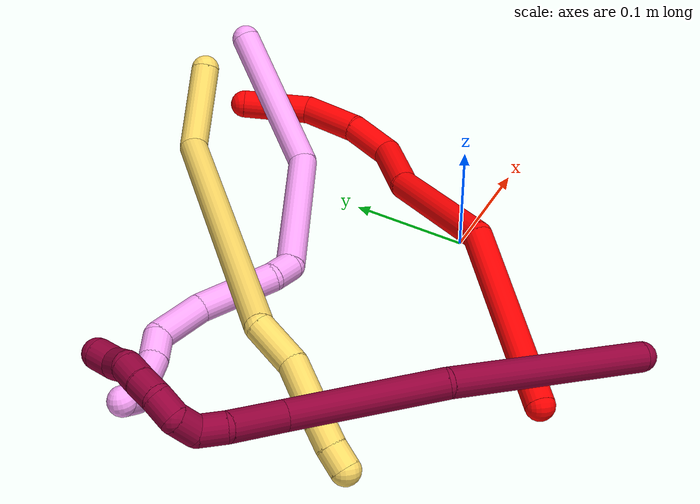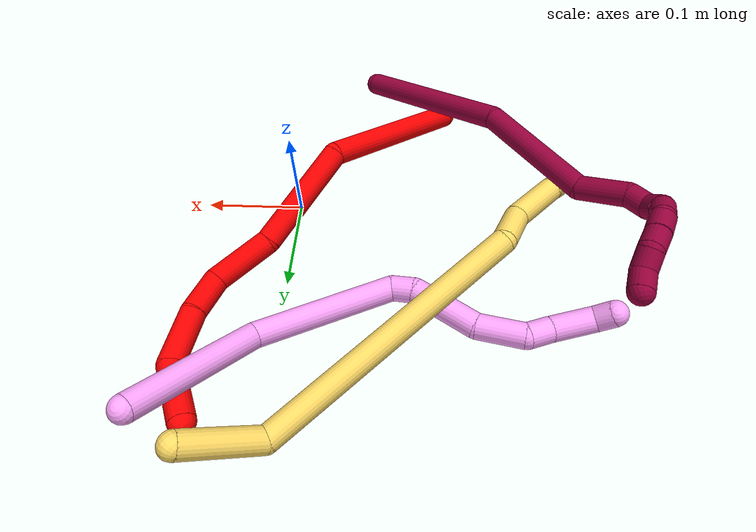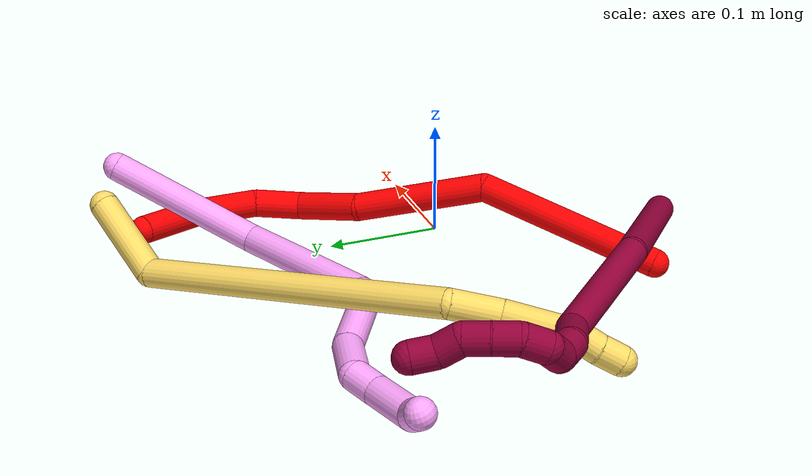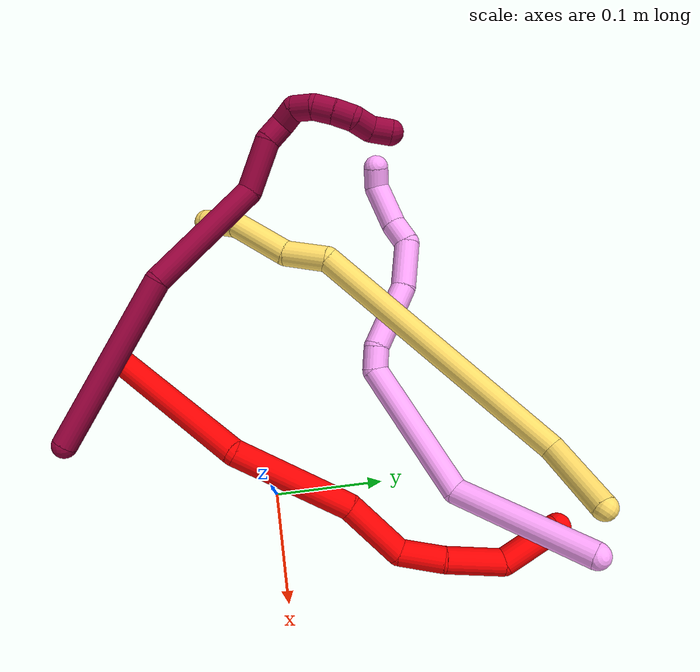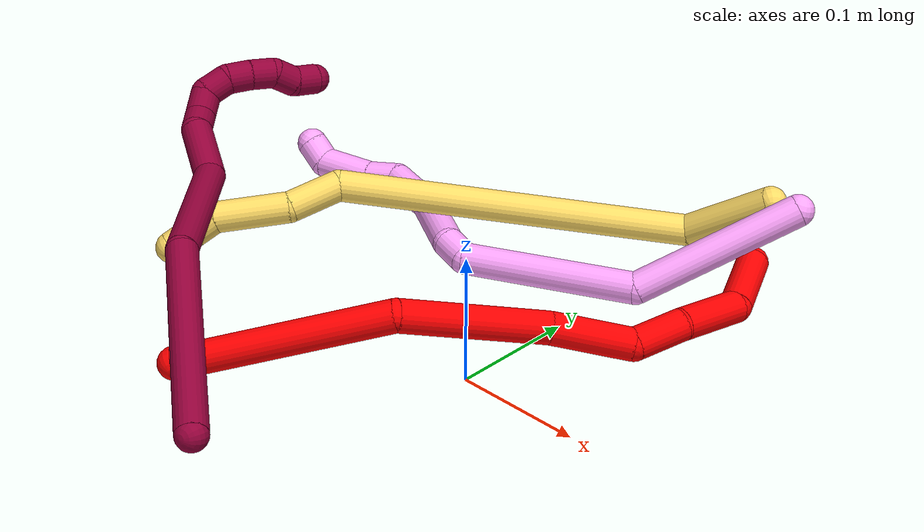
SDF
<sdf version="1.7">
 <world name="default">
  <model name="photoneo_s_sensor">
   <static>1</static>
   <pose>0 0 2 1.57079 1.57079 3.14159</pose>
   <link name="link">
    <inertial><mass>0.1</mass></inertial>
    <sensor name="sensor" type="depth">
     <update_rate>30</update_rate>
     <camera>
      <horizontal_fov>1.22</horizontal_fov>
      <image><width>1920</width><height>1200</height><format>B8G8R8</format></image>
      <clip><near>0.1</near><far>4</far></clip>
      <depth_camera><output>points</output></depth_camera>
     </camera>
     <plugin name="camera_plugin" filename="libgazebo_ros_depth_camera.so">
      <baseline>0.2</baseline>
      <alwaysOn>1</alwaysOn>
      <updateRate>0.0</updateRate>
      <cameraName>camera_ir</cameraName>
      <imageTopicName>/camera/color/image_raw</imageTopicName>
      <cameraInfoTopicName>/camera/color/camera_info</cameraInfoTopicName>
      <depthImageTopicName>/camera/depth/image_raw</depthImageTopicName>
      <depthImageCameraInfoTopicName>/camera/depth/camera_info</depthImageCameraInfoTopicName>
      <pointCloudTopicName>/camera/depth/points</pointCloudTopicName>
      <frameName>fr_optical</frameName>
      <pointCloudCutoff>0.1</pointCloudCutoff>
      <pointCloudCutoffMax>2.0</pointCloudCutoffMax>
      <distortionK1>0</distortionK1>
      <distortionK2>0</distortionK2>
      <distortionK3>0</distortionK3>
      <distortionT1>0</distortionT1>
      <distortionT2>0</distortionT2>
      <CxPrime>0</CxPrime>
      <Cx>0</Cx>
      <Cy>0</Cy>
      <focalLength>0</focalLength>
      <hackBaseline>0</hackBaseline>
     </plugin>
    </sensor>
   </link>
  </model>
  <model name="bin">
   <static>1</static>
   <link name="bottom">
    <collision name="collision-bottom">
     <pose>0 0 -0.01 0 -0 0</pose>
     <geometry><box><size>0.8 0.6 0.02</size></box></geometry>
     <surface>
      <friction><ode><mu>100</mu><mu2>100</mu2></ode></friction>
      <contact><collide_bitmask>65535</collide_bitmask></contact>
     </surface>
    </collision>
   </link>
   <link name="west_wall">
    <collision name="collision-west_wall">
     <pose>-0.41 0 0.1 0 -0 0</pose>
     <geometry><box><size>0.02 0.6 0.2</size></box></geometry>
     <surface>
      <friction><ode><mu>100</mu><mu2>100</mu2></ode></friction>
      <contact><collide_bitmask>65535</collide_bitmask></contact>
     </surface>
    </collision>
   </link>
   <link name="east_wall">
    <collision name="collision-east_wall">
     <pose>0.41 0 0.1 0 -0 0</pose>
     <geometry><box><size>0.02 0.6 0.2</size></box></geometry>
     <surface>
      <friction><ode><mu>100</mu><mu2>100</mu2></ode></friction>
      <contact><collide_bitmask>65535</collide_bitmask></contact>
     </surface>
    </collision>
   </link>
   <link name="south_wall">
    <collision name="collision-south_wall">
     <pose>0 -0.31 0.1 0 -0 0</pose>
     <geometry><box><size>0.8 0.02 0.2</size></box></geometry>
     <surface>
      <friction><ode><mu>100</mu><mu2>100</mu2></ode></friction>
      <contact><collide_bitmask>65535</collide_bitmask></contact>
     </surface>
    </collision>
   </link>
   <link name="north_wall">
    <collision name="collision-north_wall">
     <pose>0 0.31 0.1 0 -0 0</pose>
     <geometry><box><size>0.8 0.02 0.2</size></box></geometry>
     <surface>
      <friction><ode><mu>100</mu><mu2>100</mu2></ode></friction>
      <contact><collide_bitmask>65535</collide_bitmask></contact>
     </surface>
    </collision>
   </link>
  </model>
  <model name="2">
   <static>0</static>
   <link name="2">
    <collision name="collision-cylinder-e_1_1_4">
     <pose>0.044298 0.06902 0.000218 -1.56764 0.570599 -0.568895</pose>
     <geometry><cylinder><radius>0.0125</radius><length>0.164027</length></cylinder></geometry>
     <surface>
      <friction><ode><mu>1.16</mu><mu2>1.16</mu2><slip1>0</slip1><slip2>0</slip2></ode></friction>
      <contact><ode><kp>1e+06</kp><kd>1</kd><max_vel>0</max_vel><min_depth>0.001</min_depth></ode></contact>
     </surface>
    </collision>
    <visual name="visual-cylinder-e_1_1_4">
     <pose>0.044298 0.06902 0.000218 -1.56764 0.570599 -0.568895</pose>
     <geometry><cylinder><radius>0.0125</radius><length>0.164027</length></cylinder></geometry>
     <material><ambient>1 0 0 1</ambient></material>
    </visual>
    <collision name="collision-cylinder-e_2_4_5">
     <pose>0.090915 0.195568 0.011913 -1.37387 0.039492 -0.032392</pose>
     <geometry><cylinder><radius>0.0125</radius><length>0.117413</length></cylinder></geometry>
     <surface>
      <friction><ode><mu>1.16</mu><mu2>1.16</mu2><slip1>0</slip1><slip2>0</slip2></ode></friction>
      <contact><ode><kp>1e+06</kp><kd>1</kd><max_vel>0</max_vel><min_depth>0.001</min_depth></ode></contact>
     </surface>
    </collision>
    <visual name="visual-cylinder-e_2_4_5">
     <pose>0.090915 0.195568 0.011913 -1.37387 0.039492 -0.032392</pose>
     <geometry><cylinder><radius>0.0125</radius><length>0.117413</length></cylinder></geometry>
     <material><ambient>1 0 0 1</ambient></material>
    </visual>
    <collision name="collision-cylinder-e_3_5_6">
     <pose>0.097254 0.283815 0.020418 -1.66725 0.129566 -0.142664</pose>
     <geometry><cylinder><radius>0.0125</radius><length>0.062249</length></cylinder></geometry>
     <surface>
      <friction><ode><mu>1.16</mu><mu2>1.16</mu2><slip1>0</slip1><slip2>0</slip2></ode></friction>
      <contact><ode><kp>1e+06</kp><kd>1</kd><max_vel>0</max_vel><min_depth>0.001</min_depth></ode></contact>
     </surface>
    </collision>
    <visual name="visual-cylinder-e_3_5_6">
     <pose>0.097254 0.283815 0.020418 -1.66725 0.129566 -0.142664</pose>
     <geometry><cylinder><radius>0.0125</radius><length>0.062249</length></cylinder></geometry>
     <material><ambient>1 0 0 1</ambient></material>
    </visual>
    <collision name="collision-cylinder-e_4_6_7">
     <pose>0.108003 0.331761 0.027427 -1.04564 0.325873 -0.188921</pose>
     <geometry><cylinder><radius>0.0125</radius><length>0.042029</length></cylinder></geometry>
     <surface>
      <friction><ode><mu>1.16</mu><mu2>1.16</mu2><slip1>0</slip1><slip2>0</slip2></ode></friction>
      <contact><ode><kp>1e+06</kp><kd>1</kd><max_vel>0</max_vel><min_depth>0.001</min_depth></ode></contact>
     </surface>
    </collision>
    <visual name="visual-cylinder-e_4_6_7">
     <pose>0.108003 0.331761 0.027427 -1.04564 0.325873 -0.188921</pose>
     <geometry><cylinder><radius>0.0125</radius><length>0.042029</length></cylinder></geometry>
     <material><ambient>1 0 0 1</ambient></material>
    </visual>
    <collision name="collision-cylinder-e_5_7_8">
     <pose>0.117907 0.37122 0.052562 -0.972538 0.117545 -0.062186</pose>
     <geometry><cylinder><radius>0.0125</radius><length>0.054186</length></cylinder></geometry>
     <surface>
      <friction><ode><mu>1.16</mu><mu2>1.16</mu2><slip1>0</slip1><slip2>0</slip2></ode></friction>
      <contact><ode><kp>1e+06</kp><kd>1</kd><max_vel>0</max_vel><min_depth>0.001</min_depth></ode></contact>
     </surface>
    </collision>
    <visual name="visual-cylinder-e_5_7_8">
     <pose>0.117907 0.37122 0.052562 -0.972538 0.117545 -0.062186</pose>
     <geometry><cylinder><radius>0.0125</radius><length>0.054186</length></cylinder></geometry>
     <material><ambient>1 0 0 1</ambient></material>
    </visual>
    <collision name="collision-cylinder-e_6_8_2">
     <pose>0.123291 0.403712 0.095871 -0.349423 0.073478 -0.012975</pose>
     <geometry><cylinder><radius>0.0125</radius><length>0.060096</length></cylinder></geometry>
     <surface>
      <friction><ode><mu>1.16</mu><mu2>1.16</mu2><slip1>0</slip1><slip2>0</slip2></ode></friction>
      <contact><ode><kp>1e+06</kp><kd>1</kd><max_vel>0</max_vel><min_depth>0.001</min_depth></ode></contact>
     </surface>
    </collision>
    <visual name="visual-cylinder-e_6_8_2">
     <pose>0.123291 0.403712 0.095871 -0.349423 0.073478 -0.012975</pose>
     <geometry><cylinder><radius>0.0125</radius><length>0.060096</length></cylinder></geometry>
     <material><ambient>1 0 0 1</ambient></material>
    </visual>
    <collision name="collision-sphere-2">
     <pose>0.125497 0.413971 0.124027 0 -0 0</pose>
     <geometry><sphere><radius>0.0125</radius></sphere></geometry>
     <surface>
      <friction><ode><mu>1.16</mu><mu2>1.16</mu2><slip1>0</slip1><slip2>0</slip2></ode></friction>
      <contact><ode><kp>1e+06</kp><kd>1</kd><max_vel>0</max_vel><min_depth>0.001</min_depth></ode></contact>
     </surface>
    </collision>
    <visual name="visual-sphere-2">
     <pose>0.125497 0.413971 0.124027 0 -0 0</pose>
     <geometry><sphere><radius>0.0125</radius></sphere></geometry>
     <material><ambient>1 0 0 1</ambient></material>
    </visual>
    <collision name="collision-sphere-4">
     <pose>0.088597 0.138041 0.000436 0 -0 0</pose>
     <geometry><sphere><radius>0.0125</radius></sphere></geometry>
     <surface>
      <friction><ode><mu>1.16</mu><mu2>1.16</mu2><slip1>0</slip1><slip2>0</slip2></ode></friction>
      <contact><ode><kp>1e+06</kp><kd>1</kd><max_vel>0</max_vel><min_depth>0.001</min_depth></ode></contact>
     </surface>
    </collision>
    <visual name="visual-sphere-4">
     <pose>0.088597 0.138041 0.000436 0 -0 0</pose>
     <geometry><sphere><radius>0.0125</radius></sphere></geometry>
     <material><ambient>1 0 0 1</ambient></material>
    </visual>
    <collision name="collision-sphere-1">
     <geometry><sphere><radius>0.0125</radius></sphere></geometry>
     <surface>
      <friction><ode><mu>1.16</mu><mu2>1.16</mu2><slip1>0</slip1><slip2>0</slip2></ode></friction>
      <contact><ode><kp>1e+06</kp><kd>1</kd><max_vel>0</max_vel><min_depth>0.001</min_depth></ode></contact>
     </surface>
    </collision>
    <visual name="visual-sphere-1">
     <geometry><sphere><radius>0.0125</radius></sphere></geometry>
     <material><ambient>1 0 0 1</ambient></material>
    </visual>
    <collision name="collision-sphere-8">
     <pose>0.121085 0.393453 0.067715 0 -0 0</pose>
     <geometry><sphere><radius>0.0125</radius></sphere></geometry>
     <surface>
      <friction><ode><mu>1.16</mu><mu2>1.16</mu2><slip1>0</slip1><slip2>0</slip2></ode></friction>
      <contact><ode><kp>1e+06</kp><kd>1</kd><max_vel>0</max_vel><min_depth>0.001</min_depth></ode></contact>
     </surface>
    </collision>
    <visual name="visual-sphere-8">
     <pose>0.121085 0.393453 0.067715 0 -0 0</pose>
     <geometry><sphere><radius>0.0125</radius></sphere></geometry>
     <material><ambient>1 0 0 1</ambient></material>
    </visual>
    <collision name="collision-sphere-5">
     <pose>0.093232 0.253095 0.02339 0 -0 0</pose>
     <geometry><sphere><radius>0.0125</radius></sphere></geometry>
     <surface>
      <friction><ode><mu>1.16</mu><mu2>1.16</mu2><slip1>0</slip1><slip2>0</slip2></ode></friction>
      <contact><ode><kp>1e+06</kp><kd>1</kd><max_vel>0</max_vel><min_depth>0.001</min_depth></ode></contact>
     </surface>
    </collision>
    <visual name="visual-sphere-5">
     <pose>0.093232 0.253095 0.02339 0 -0 0</pose>
     <geometry><sphere><radius>0.0125</radius></sphere></geometry>
     <material><ambient>1 0 0 1</ambient></material>
    </visual>
    <collision name="collision-sphere-6">
     <pose>0.101275 0.314535 0.017446 0 -0 0</pose>
     <geometry><sphere><radius>0.0125</radius></sphere></geometry>
     <surface>
      <friction><ode><mu>1.16</mu><mu2>1.16</mu2><slip1>0</slip1><slip2>0</slip2></ode></friction>
      <contact><ode><kp>1e+06</kp><kd>1</kd><max_vel>0</max_vel><min_depth>0.001</min_depth></ode></contact>
     </surface>
    </collision>
    <visual name="visual-sphere-6">
     <pose>0.101275 0.314535 0.017446 0 -0 0</pose>
     <geometry><sphere><radius>0.0125</radius></sphere></geometry>
     <material><ambient>1 0 0 1</ambient></material>
    </visual>
    <collision name="collision-sphere-7">
     <pose>0.11473 0.348987 0.037408 0 -0 0</pose>
     <geometry><sphere><radius>0.0125</radius></sphere></geometry>
     <surface>
      <friction><ode><mu>1.16</mu><mu2>1.16</mu2><slip1>0</slip1><slip2>0</slip2></ode></friction>
      <contact><ode><kp>1e+06</kp><kd>1</kd><max_vel>0</max_vel><min_depth>0.001</min_depth></ode></contact>
     </surface>
    </collision>
    <visual name="visual-sphere-7">
     <pose>0.11473 0.348987 0.037408 0 -0 0</pose>
     <geometry><sphere><radius>0.0125</radius></sphere></geometry>
     <material><ambient>1 0 0 1</ambient></material>
    </visual>
    <inertial>
     <pose>0.084664 0.220541 0.024936 0 -0 0</pose>
     <mass>0.5</mass>
     <inertia><ixx>0.000299</ixx><ixy>0</ixy><ixz>0</ixz><iyy>2e-05</iyy><iyz>0</iyz><izz>-0.000706</izz></inertia>
    </inertial>
   </link>
   <pose>-0.151588 -0.14231 0.011497 -1.2081 -1.23252 0.452327</pose>
  </model>
  <model name="4">
   <static>0</static>
   <link name="4">
    <collision name="collision-cylinder-e_1_1_4">
     <pose>-0.034712 -0.035735 -0.045852 2.47956 -0.538292 -1.35271</pose>
     <geometry><cylinder><radius>0.0125</radius><length>0.135415</length></cylinder></geometry>
     <surface>
      <friction><ode><mu>1.16</mu><mu2>1.16</mu2><slip1>0</slip1><slip2>0</slip2></ode></friction>
      <contact><ode><kp>1e+06</kp><kd>1</kd><max_vel>0</max_vel><min_depth>0.001</min_depth></ode></contact>
     </surface>
    </collision>
    <visual name="visual-cylinder-e_1_1_4">
     <pose>-0.034712 -0.035735 -0.045852 2.47956 -0.538292 -1.35271</pose>
     <geometry><cylinder><radius>0.0125</radius><length>0.135415</length></cylinder></geometry>
     <material><ambient>1 0.65098 0.996078 1</ambient></material>
    </visual>
    <collision name="collision-cylinder-e_2_4_5">
     <pose>-0.132348 -0.092812 -0.107909 2.22025 -1.16821 -1.85363</pose>
     <geometry><cylinder><radius>0.0125</radius><length>0.136787</length></cylinder></geometry>
     <surface>
      <friction><ode><mu>1.16</mu><mu2>1.16</mu2><slip1>0</slip1><slip2>0</slip2></ode></friction>
      <contact><ode><kp>1e+06</kp><kd>1</kd><max_vel>0</max_vel><min_depth>0.001</min_depth></ode></contact>
     </surface>
    </collision>
    <visual name="visual-cylinder-e_2_4_5">
     <pose>-0.132348 -0.092812 -0.107909 2.22025 -1.16821 -1.85363</pose>
     <geometry><cylinder><radius>0.0125</radius><length>0.136787</length></cylinder></geometry>
     <material><ambient>1 0.65098 0.996078 1</ambient></material>
    </visual>
    <collision name="collision-cylinder-e_3_5_6">
     <pose>-0.206442 -0.111543 -0.122998 -1.16664 -1.32186 0.948234</pose>
     <geometry><cylinder><radius>0.0125</radius><length>0.023047</length></cylinder></geometry>
     <surface>
      <friction><ode><mu>1.16</mu><mu2>1.16</mu2><slip1>0</slip1><slip2>0</slip2></ode></friction>
      <contact><ode><kp>1e+06</kp><kd>1</kd><max_vel>0</max_vel><min_depth>0.001</min_depth></ode></contact>
     </surface>
    </collision>
    <visual name="visual-cylinder-e_3_5_6">
     <pose>-0.206442 -0.111543 -0.122998 -1.16664 -1.32186 0.948234</pose>
     <geometry><cylinder><radius>0.0125</radius><length>0.023047</length></cylinder></geometry>
     <material><ambient>1 0.65098 0.996078 1</ambient></material>
    </visual>
    <collision name="collision-cylinder-e_4_6_7">
     <pose>-0.245245 -0.088703 -0.121118 -1.53307 -0.93855 0.908451</pose>
     <geometry><cylinder><radius>0.0125</radius><length>0.068511</length></cylinder></geometry>
     <surface>
      <friction><ode><mu>1.16</mu><mu2>1.16</mu2><slip1>0</slip1><slip2>0</slip2></ode></friction>
      <contact><ode><kp>1e+06</kp><kd>1</kd><max_vel>0</max_vel><min_depth>0.001</min_depth></ode></contact>
     </surface>
    </collision>
    <visual name="visual-cylinder-e_4_6_7">
     <pose>-0.245245 -0.088703 -0.121118 -1.53307 -0.93855 0.908451</pose>
     <geometry><cylinder><radius>0.0125</radius><length>0.068511</length></cylinder></geometry>
     <material><ambient>1 0.65098 0.996078 1</ambient></material>
    </visual>
    <collision name="collision-cylinder-e_5_7_8">
     <pose>-0.295374 -0.061666 -0.119949 -1.5113 -1.27645 1.21999</pose>
     <geometry><cylinder><radius>0.0125</radius><length>0.047013</length></cylinder></geometry>
     <surface>
      <friction><ode><mu>1.16</mu><mu2>1.16</mu2><slip1>0</slip1><slip2>0</slip2></ode></friction>
      <contact><ode><kp>1e+06</kp><kd>1</kd><max_vel>0</max_vel><min_depth>0.001</min_depth></ode></contact>
     </surface>
    </collision>
    <visual name="visual-cylinder-e_5_7_8">
     <pose>-0.295374 -0.061666 -0.119949 -1.5113 -1.27645 1.21999</pose>
     <geometry><cylinder><radius>0.0125</radius><length>0.047013</length></cylinder></geometry>
     <material><ambient>1 0.65098 0.996078 1</ambient></material>
    </visual>
    <collision name="collision-cylinder-e_6_8_9">
     <pose>-0.329151 -0.05796 -0.123743 2.50543 -1.13738 -2.19016</pose>
     <geometry><cylinder><radius>0.0125</radius><length>0.024862</length></cylinder></geometry>
     <surface>
      <friction><ode><mu>1.16</mu><mu2>1.16</mu2><slip1>0</slip1><slip2>0</slip2></ode></friction>
      <contact><ode><kp>1e+06</kp><kd>1</kd><max_vel>0</max_vel><min_depth>0.001</min_depth></ode></contact>
     </surface>
    </collision>
    <visual name="visual-cylinder-e_6_8_9">
     <pose>-0.329151 -0.05796 -0.123743 2.50543 -1.13738 -2.19016</pose>
     <geometry><cylinder><radius>0.0125</radius><length>0.024862</length></cylinder></geometry>
     <material><ambient>1 0.65098 0.996078 1</ambient></material>
    </visual>
    <collision name="collision-cylinder-e_7_9_10">
     <pose>-0.361982 -0.064841 -0.131164 2.27676 -1.3443 -2.0904</pose>
     <geometry><cylinder><radius>0.0125</radius><length>0.044228</length></cylinder></geometry>
     <surface>
      <friction><ode><mu>1.16</mu><mu2>1.16</mu2><slip1>0</slip1><slip2>0</slip2></ode></friction>
      <contact><ode><kp>1e+06</kp><kd>1</kd><max_vel>0</max_vel><min_depth>0.001</min_depth></ode></contact>
     </surface>
    </collision>
    <visual name="visual-cylinder-e_7_9_10">
     <pose>-0.361982 -0.064841 -0.131164 2.27676 -1.3443 -2.0904</pose>
     <geometry><cylinder><radius>0.0125</radius><length>0.044228</length></cylinder></geometry>
     <material><ambient>1 0.65098 0.996078 1</ambient></material>
    </visual>
    <collision name="collision-cylinder-e_8_10_2">
     <pose>-0.392398 -0.069231 -0.129655 0.12834 -1.07726 -0.07676</pose>
     <geometry><cylinder><radius>0.0125</radius><length>0.020138</length></cylinder></geometry>
     <surface>
      <friction><ode><mu>1.16</mu><mu2>1.16</mu2><slip1>0</slip1><slip2>0</slip2></ode></friction>
      <contact><ode><kp>1e+06</kp><kd>1</kd><max_vel>0</max_vel><min_depth>0.001</min_depth></ode></contact>
     </surface>
    </collision>
    <visual name="visual-cylinder-e_8_10_2">
     <pose>-0.392398 -0.069231 -0.129655 0.12834 -1.07726 -0.07676</pose>
     <geometry><cylinder><radius>0.0125</radius><length>0.020138</length></cylinder></geometry>
     <material><ambient>1 0.65098 0.996078 1</ambient></material>
    </visual>
    <collision name="collision-sphere-2">
     <pose>-0.401265 -0.069841 -0.124925 0 -0 0</pose>
     <geometry><sphere><radius>0.0125</radius></sphere></geometry>
     <surface>
      <friction><ode><mu>1.16</mu><mu2>1.16</mu2><slip1>0</slip1><slip2>0</slip2></ode></friction>
      <contact><ode><kp>1e+06</kp><kd>1</kd><max_vel>0</max_vel><min_depth>0.001</min_depth></ode></contact>
     </surface>
    </collision>
    <visual name="visual-sphere-2">
     <pose>-0.401265 -0.069841 -0.124925 0 -0 0</pose>
     <geometry><sphere><radius>0.0125</radius></sphere></geometry>
     <material><ambient>1 0.65098 0.996078 1</ambient></material>
    </visual>
    <collision name="collision-sphere-10">
     <pose>-0.383531 -0.06862 -0.134386 0 -0 0</pose>
     <geometry><sphere><radius>0.0125</radius></sphere></geometry>
     <surface>
      <friction><ode><mu>1.16</mu><mu2>1.16</mu2><slip1>0</slip1><slip2>0</slip2></ode></friction>
      <contact><ode><kp>1e+06</kp><kd>1</kd><max_vel>0</max_vel><min_depth>0.001</min_depth></ode></contact>
     </surface>
    </collision>
    <visual name="visual-sphere-10">
     <pose>-0.383531 -0.06862 -0.134386 0 -0 0</pose>
     <geometry><sphere><radius>0.0125</radius></sphere></geometry>
     <material><ambient>1 0.65098 0.996078 1</ambient></material>
    </visual>
    <collision name="collision-sphere-9">
     <pose>-0.340432 -0.061062 -0.127942 0 -0 0</pose>
     <geometry><sphere><radius>0.0125</radius></sphere></geometry>
     <surface>
      <friction><ode><mu>1.16</mu><mu2>1.16</mu2><slip1>0</slip1><slip2>0</slip2></ode></friction>
      <contact><ode><kp>1e+06</kp><kd>1</kd><max_vel>0</max_vel><min_depth>0.001</min_depth></ode></contact>
     </surface>
    </collision>
    <visual name="visual-sphere-9">
     <pose>-0.340432 -0.061062 -0.127942 0 -0 0</pose>
     <geometry><sphere><radius>0.0125</radius></sphere></geometry>
     <material><ambient>1 0.65098 0.996078 1</ambient></material>
    </visual>
    <collision name="collision-sphere-4">
     <pose>-0.069423 -0.071471 -0.091704 0 -0 0</pose>
     <geometry><sphere><radius>0.0125</radius></sphere></geometry>
     <surface>
      <friction><ode><mu>1.16</mu><mu2>1.16</mu2><slip1>0</slip1><slip2>0</slip2></ode></friction>
      <contact><ode><kp>1e+06</kp><kd>1</kd><max_vel>0</max_vel><min_depth>0.001</min_depth></ode></contact>
     </surface>
    </collision>
    <visual name="visual-sphere-4">
     <pose>-0.069423 -0.071471 -0.091704 0 -0 0</pose>
     <geometry><sphere><radius>0.0125</radius></sphere></geometry>
     <material><ambient>1 0.65098 0.996078 1</ambient></material>
    </visual>
    <collision name="collision-sphere-1">
     <geometry><sphere><radius>0.0125</radius></sphere></geometry>
     <surface>
      <friction><ode><mu>1.16</mu><mu2>1.16</mu2><slip1>0</slip1><slip2>0</slip2></ode></friction>
      <contact><ode><kp>1e+06</kp><kd>1</kd><max_vel>0</max_vel><min_depth>0.001</min_depth></ode></contact>
     </surface>
    </collision>
    <visual name="visual-sphere-1">
     <geometry><sphere><radius>0.0125</radius></sphere></geometry>
     <material><ambient>1 0.65098 0.996078 1</ambient></material>
    </visual>
    <collision name="collision-sphere-8">
     <pose>-0.317869 -0.054859 -0.119543 0 -0 0</pose>
     <geometry><sphere><radius>0.0125</radius></sphere></geometry>
     <surface>
      <friction><ode><mu>1.16</mu><mu2>1.16</mu2><slip1>0</slip1><slip2>0</slip2></ode></friction>
      <contact><ode><kp>1e+06</kp><kd>1</kd><max_vel>0</max_vel><min_depth>0.001</min_depth></ode></contact>
     </surface>
    </collision>
    <visual name="visual-sphere-8">
     <pose>-0.317869 -0.054859 -0.119543 0 -0 0</pose>
     <geometry><sphere><radius>0.0125</radius></sphere></geometry>
     <material><ambient>1 0.65098 0.996078 1</ambient></material>
    </visual>
    <collision name="collision-sphere-5">
     <pose>-0.195274 -0.114153 -0.124114 0 -0 0</pose>
     <geometry><sphere><radius>0.0125</radius></sphere></geometry>
     <surface>
      <friction><ode><mu>1.16</mu><mu2>1.16</mu2><slip1>0</slip1><slip2>0</slip2></ode></friction>
      <contact><ode><kp>1e+06</kp><kd>1</kd><max_vel>0</max_vel><min_depth>0.001</min_depth></ode></contact>
     </surface>
    </collision>
    <visual name="visual-sphere-5">
     <pose>-0.195274 -0.114153 -0.124114 0 -0 0</pose>
     <geometry><sphere><radius>0.0125</radius></sphere></geometry>
     <material><ambient>1 0.65098 0.996078 1</ambient></material>
    </visual>
    <collision name="collision-sphere-6">
     <pose>-0.21761 -0.108932 -0.121881 0 -0 0</pose>
     <geometry><sphere><radius>0.0125</radius></sphere></geometry>
     <surface>
      <friction><ode><mu>1.16</mu><mu2>1.16</mu2><slip1>0</slip1><slip2>0</slip2></ode></friction>
      <contact><ode><kp>1e+06</kp><kd>1</kd><max_vel>0</max_vel><min_depth>0.001</min_depth></ode></contact>
     </surface>
    </collision>
    <visual name="visual-sphere-6">
     <pose>-0.21761 -0.108932 -0.121881 0 -0 0</pose>
     <geometry><sphere><radius>0.0125</radius></sphere></geometry>
     <material><ambient>1 0.65098 0.996078 1</ambient></material>
    </visual>
    <collision name="collision-sphere-7">
     <pose>-0.272879 -0.068474 -0.120354 0 -0 0</pose>
     <geometry><sphere><radius>0.0125</radius></sphere></geometry>
     <surface>
      <friction><ode><mu>1.16</mu><mu2>1.16</mu2><slip1>0</slip1><slip2>0</slip2></ode></friction>
      <contact><ode><kp>1e+06</kp><kd>1</kd><max_vel>0</max_vel><min_depth>0.001</min_depth></ode></contact>
     </surface>
    </collision>
    <visual name="visual-sphere-7">
     <pose>-0.272879 -0.068474 -0.120354 0 -0 0</pose>
     <geometry><sphere><radius>0.0125</radius></sphere></geometry>
     <material><ambient>1 0.65098 0.996078 1</ambient></material>
    </visual>
    <inertial>
     <pose>-0.18069 -0.069569 -0.09846 0 -0 0</pose>
     <mass>0.5</mass>
     <inertia>
      <ixx>-0.00025</ixx>
      <ixy>0</ixy>
      <ixz>0</ixz>
      <iyy>1.2e-05</iyy>
      <iyz>0</iyz>
      <izz>0.000509</izz>
     </inertia>
    </inertial>
   </link>
   <pose>0.090292 0.266763 0.067757 -0.303689 0.139782 0.059976</pose>
  </model>
  <model name="5">
   <static>0</static>
   <link name="5">
    <collision name="collision-cylinder-e_1_1_4">
     <pose>-0.033297 -0.01451 0.012671 0.85296 -1.04631 -0.512594</pose>
     <geometry><cylinder><radius>0.0125</radius><length>0.076937</length></cylinder></geometry>
     <surface>
      <friction><ode><mu>1.16</mu><mu2>1.16</mu2><slip1>0</slip1><slip2>0</slip2></ode></friction>
      <contact><ode><kp>1e+06</kp><kd>1</kd><max_vel>0</max_vel><min_depth>0.001</min_depth></ode></contact>
     </surface>
    </collision>
    <visual name="visual-cylinder-e_1_1_4">
     <pose>-0.033297 -0.01451 0.012671 0.85296 -1.04631 -0.512594</pose>
     <geometry><cylinder><radius>0.0125</radius><length>0.076937</length></cylinder></geometry>
     <material><ambient>1 0.858824 0.4 1</ambient></material>
    </visual>
    <collision name="collision-cylinder-e_2_4_5">
     <pose>-0.120119 -0.157259 0.039405 1.46157 -0.393274 -0.353394</pose>
     <geometry><cylinder><radius>0.0125</radius><length>0.279341</length></cylinder></geometry>
     <surface>
      <friction><ode><mu>1.16</mu><mu2>1.16</mu2><slip1>0</slip1><slip2>0</slip2></ode></friction>
      <contact><ode><kp>1e+06</kp><kd>1</kd><max_vel>0</max_vel><min_depth>0.001</min_depth></ode></contact>
     </surface>
    </collision>
    <visual name="visual-cylinder-e_2_4_5">
     <pose>-0.120119 -0.157259 0.039405 1.46157 -0.393274 -0.353394</pose>
     <geometry><cylinder><radius>0.0125</radius><length>0.279341</length></cylinder></geometry>
     <material><ambient>1 0.858824 0.4 1</ambient></material>
    </visual>
    <collision name="collision-cylinder-e_3_5_6">
     <pose>-0.186799 -0.300424 0.045445 2.064 -0.660194 -1.04091</pose>
     <geometry><cylinder><radius>0.0125</radius><length>0.042907</length></cylinder></geometry>
     <surface>
      <friction><ode><mu>1.16</mu><mu2>1.16</mu2><slip1>0</slip1><slip2>0</slip2></ode></friction>
      <contact><ode><kp>1e+06</kp><kd>1</kd><max_vel>0</max_vel><min_depth>0.001</min_depth></ode></contact>
     </surface>
    </collision>
    <visual name="visual-cylinder-e_3_5_6">
     <pose>-0.186799 -0.300424 0.045445 2.064 -0.660194 -1.04091</pose>
     <geometry><cylinder><radius>0.0125</radius><length>0.042907</length></cylinder></geometry>
     <material><ambient>1 0.858824 0.4 1</ambient></material>
    </visual>
    <collision name="collision-cylinder-e_4_6_7">
     <pose>-0.217313 -0.339397 0.036481 1.60993 -0.624827 -0.64809</pose>
     <geometry><cylinder><radius>0.0125</radius><length>0.059344</length></cylinder></geometry>
     <surface>
      <friction><ode><mu>1.16</mu><mu2>1.16</mu2><slip1>0</slip1><slip2>0</slip2></ode></friction>
      <contact><ode><kp>1e+06</kp><kd>1</kd><max_vel>0</max_vel><min_depth>0.001</min_depth></ode></contact>
     </surface>
    </collision>
    <visual name="visual-cylinder-e_4_6_7">
     <pose>-0.217313 -0.339397 0.036481 1.60993 -0.624827 -0.64809</pose>
     <geometry><cylinder><radius>0.0125</radius><length>0.059344</length></cylinder></geometry>
     <material><ambient>1 0.858824 0.4 1</ambient></material>
    </visual>
    <collision name="collision-cylinder-e_5_7_8">
     <pose>-0.243499 -0.368323 0.033234 2.01229 -1.0223 -1.4494</pose>
     <geometry><cylinder><radius>0.0125</radius><length>0.020695</length></cylinder></geometry>
     <surface>
      <friction><ode><mu>1.16</mu><mu2>1.16</mu2><slip1>0</slip1><slip2>0</slip2></ode></friction>
      <contact><ode><kp>1e+06</kp><kd>1</kd><max_vel>0</max_vel><min_depth>0.001</min_depth></ode></contact>
     </surface>
    </collision>
    <visual name="visual-cylinder-e_5_7_8">
     <pose>-0.243499 -0.368323 0.033234 2.01229 -1.0223 -1.4494</pose>
     <geometry><cylinder><radius>0.0125</radius><length>0.020695</length></cylinder></geometry>
     <material><ambient>1 0.858824 0.4 1</ambient></material>
    </visual>
    <collision name="collision-cylinder-e_6_8_2">
     <pose>-0.260636 -0.378519 0.027669 2.12056 -0.926747 -1.45697</pose>
     <geometry><cylinder><radius>0.0125</radius><length>0.020777</length></cylinder></geometry>
     <surface>
      <friction><ode><mu>1.16</mu><mu2>1.16</mu2><slip1>0</slip1><slip2>0</slip2></ode></friction>
      <contact><ode><kp>1e+06</kp><kd>1</kd><max_vel>0</max_vel><min_depth>0.001</min_depth></ode></contact>
     </surface>
    </collision>
    <visual name="visual-cylinder-e_6_8_2">
     <pose>-0.260636 -0.378519 0.027669 2.12056 -0.926747 -1.45697</pose>
     <geometry><cylinder><radius>0.0125</radius><length>0.020777</length></cylinder></geometry>
     <material><ambient>1 0.858824 0.4 1</ambient></material>
    </visual>
    <collision name="collision-sphere-2">
     <pose>-0.268943 -0.383838 0.02441 0 -0 0</pose>
     <geometry><sphere><radius>0.0125</radius></sphere></geometry>
     <surface>
      <friction><ode><mu>1.16</mu><mu2>1.16</mu2><slip1>0</slip1><slip2>0</slip2></ode></friction>
      <contact><ode><kp>1e+06</kp><kd>1</kd><max_vel>0</max_vel><min_depth>0.001</min_depth></ode></contact>
     </surface>
    </collision>
    <visual name="visual-sphere-2">
     <pose>-0.268943 -0.383838 0.02441 0 -0 0</pose>
     <geometry><sphere><radius>0.0125</radius></sphere></geometry>
     <material><ambient>1 0.858824 0.4 1</ambient></material>
    </visual>
    <collision name="collision-sphere-4">
     <pose>-0.066595 -0.02902 0.025342 0 -0 0</pose>
     <geometry><sphere><radius>0.0125</radius></sphere></geometry>
     <surface>
      <friction><ode><mu>1.16</mu><mu2>1.16</mu2><slip1>0</slip1><slip2>0</slip2></ode></friction>
      <contact><ode><kp>1e+06</kp><kd>1</kd><max_vel>0</max_vel><min_depth>0.001</min_depth></ode></contact>
     </surface>
    </collision>
    <visual name="visual-sphere-4">
     <pose>-0.066595 -0.02902 0.025342 0 -0 0</pose>
     <geometry><sphere><radius>0.0125</radius></sphere></geometry>
     <material><ambient>1 0.858824 0.4 1</ambient></material>
    </visual>
    <collision name="collision-sphere-1">
     <geometry><sphere><radius>0.0125</radius></sphere></geometry>
     <surface>
      <friction><ode><mu>1.16</mu><mu2>1.16</mu2><slip1>0</slip1><slip2>0</slip2></ode></friction>
      <contact><ode><kp>1e+06</kp><kd>1</kd><max_vel>0</max_vel><min_depth>0.001</min_depth></ode></contact>
     </surface>
    </collision>
    <visual name="visual-sphere-1">
     <geometry><sphere><radius>0.0125</radius></sphere></geometry>
     <material><ambient>1 0.858824 0.4 1</ambient></material>
    </visual>
    <collision name="collision-sphere-8">
     <pose>-0.252329 -0.373201 0.030928 0 -0 0</pose>
     <geometry><sphere><radius>0.0125</radius></sphere></geometry>
     <surface>
      <friction><ode><mu>1.16</mu><mu2>1.16</mu2><slip1>0</slip1><slip2>0</slip2></ode></friction>
      <contact><ode><kp>1e+06</kp><kd>1</kd><max_vel>0</max_vel><min_depth>0.001</min_depth></ode></contact>
     </surface>
    </collision>
    <visual name="visual-sphere-8">
     <pose>-0.252329 -0.373201 0.030928 0 -0 0</pose>
     <geometry><sphere><radius>0.0125</radius></sphere></geometry>
     <material><ambient>1 0.858824 0.4 1</ambient></material>
    </visual>
    <collision name="collision-sphere-5">
     <pose>-0.173642 -0.285498 0.053468 0 -0 0</pose>
     <geometry><sphere><radius>0.0125</radius></sphere></geometry>
     <surface>
      <friction><ode><mu>1.16</mu><mu2>1.16</mu2><slip1>0</slip1><slip2>0</slip2></ode></friction>
      <contact><ode><kp>1e+06</kp><kd>1</kd><max_vel>0</max_vel><min_depth>0.001</min_depth></ode></contact>
     </surface>
    </collision>
    <visual name="visual-sphere-5">
     <pose>-0.173642 -0.285498 0.053468 0 -0 0</pose>
     <geometry><sphere><radius>0.0125</radius></sphere></geometry>
     <material><ambient>1 0.858824 0.4 1</ambient></material>
    </visual>
    <collision name="collision-sphere-6">
     <pose>-0.199956 -0.31535 0.037422 0 -0 0</pose>
     <geometry><sphere><radius>0.0125</radius></sphere></geometry>
     <surface>
      <friction><ode><mu>1.16</mu><mu2>1.16</mu2><slip1>0</slip1><slip2>0</slip2></ode></friction>
      <contact><ode><kp>1e+06</kp><kd>1</kd><max_vel>0</max_vel><min_depth>0.001</min_depth></ode></contact>
     </surface>
    </collision>
    <visual name="visual-sphere-6">
     <pose>-0.199956 -0.31535 0.037422 0 -0 0</pose>
     <geometry><sphere><radius>0.0125</radius></sphere></geometry>
     <material><ambient>1 0.858824 0.4 1</ambient></material>
    </visual>
    <collision name="collision-sphere-7">
     <pose>-0.234669 -0.363445 0.035539 0 -0 0</pose>
     <geometry><sphere><radius>0.0125</radius></sphere></geometry>
     <surface>
      <friction><ode><mu>1.16</mu><mu2>1.16</mu2><slip1>0</slip1><slip2>0</slip2></ode></friction>
      <contact><ode><kp>1e+06</kp><kd>1</kd><max_vel>0</max_vel><min_depth>0.001</min_depth></ode></contact>
     </surface>
    </collision>
    <visual name="visual-sphere-7">
     <pose>-0.234669 -0.363445 0.035539 0 -0 0</pose>
     <geometry><sphere><radius>0.0125</radius></sphere></geometry>
     <material><ambient>1 0.858824 0.4 1</ambient></material>
    </visual>
    <inertial>
     <pose>-0.134963 -0.187127 0.034719 0 -0 0</pose>
     <mass>0.5</mass>
     <inertia>
      <ixx>0.000985</ixx>
      <ixy>0</ixy>
      <ixz>0</ixz>
      <iyy>-0.000167</iyy>
      <iyz>0</iyz>
      <izz>0.002473</izz>
     </inertia>
    </inertial>
   </link>
   <pose>0.051139 0.287747 0.051616 -1.33259 -1.03981 0.634299</pose>
  </model>
  <model name="8">
   <static>0</static>
   <link name="8">
    <collision name="collision-cylinder-e_1_1_4">
     <pose>-0.024002 0.064557 0.0568 -0.849229 -0.272208 0.123678</pose>
     <geometry><cylinder><radius>0.0125</radius><length>0.17855</length></cylinder></geometry>
     <surface>
      <friction><ode><mu>1.16</mu><mu2>1.16</mu2><slip1>0</slip1><slip2>0</slip2></ode></friction>
      <contact><ode><kp>1e+06</kp><kd>1</kd><max_vel>0</max_vel><min_depth>0.001</min_depth></ode></contact>
     </surface>
    </collision>
    <visual name="visual-cylinder-e_1_1_4">
     <pose>-0.024002 0.064557 0.0568 -0.849229 -0.272208 0.123678</pose>
     <geometry><cylinder><radius>0.0125</radius><length>0.17855</length></cylinder></geometry>
     <material><ambient>0.584314 0 0.227451 1</ambient></material>
    </visual>
    <collision name="collision-cylinder-e_2_4_5">
     <pose>-0.05064 0.163962 0.1663 -0.584241 -0.041688 0.012538</pose>
     <geometry><cylinder><radius>0.0125</radius><length>0.126467</length></cylinder></geometry>
     <surface>
      <friction><ode><mu>1.16</mu><mu2>1.16</mu2><slip1>0</slip1><slip2>0</slip2></ode></friction>
      <contact><ode><kp>1e+06</kp><kd>1</kd><max_vel>0</max_vel><min_depth>0.001</min_depth></ode></contact>
     </surface>
    </collision>
    <visual name="visual-cylinder-e_2_4_5">
     <pose>-0.05064 0.163962 0.1663 -0.584241 -0.041688 0.012538</pose>
     <geometry><cylinder><radius>0.0125</radius><length>0.126467</length></cylinder></geometry>
     <material><ambient>0.584314 0 0.227451 1</ambient></material>
    </visual>
    <collision name="collision-cylinder-e_3_5_6">
     <pose>-0.061188 0.220008 0.231682 -1.03163 -0.309995 0.176732</pose>
     <geometry><cylinder><radius>0.0125</radius><length>0.05188</length></cylinder></geometry>
     <surface>
      <friction><ode><mu>1.16</mu><mu2>1.16</mu2><slip1>0</slip1><slip2>0</slip2></ode></friction>
      <contact><ode><kp>1e+06</kp><kd>1</kd><max_vel>0</max_vel><min_depth>0.001</min_depth></ode></contact>
     </surface>
    </collision>
    <visual name="visual-cylinder-e_3_5_6">
     <pose>-0.061188 0.220008 0.231682 -1.03163 -0.309995 0.176732</pose>
     <geometry><cylinder><radius>0.0125</radius><length>0.05188</length></cylinder></geometry>
     <material><ambient>0.584314 0 0.227451 1</ambient></material>
    </visual>
    <collision name="collision-cylinder-e_4_6_7">
     <pose>-0.070876 0.247784 0.25314 -0.643263 -0.160448 0.053564</pose>
     <geometry><cylinder><radius>0.0125</radius><length>0.022217</length></cylinder></geometry>
     <surface>
      <friction><ode><mu>1.16</mu><mu2>1.16</mu2><slip1>0</slip1><slip2>0</slip2></ode></friction>
      <contact><ode><kp>1e+06</kp><kd>1</kd><max_vel>0</max_vel><min_depth>0.001</min_depth></ode></contact>
     </surface>
    </collision>
    <visual name="visual-cylinder-e_4_6_7">
     <pose>-0.070876 0.247784 0.25314 -0.643263 -0.160448 0.053564</pose>
     <geometry><cylinder><radius>0.0125</radius><length>0.022217</length></cylinder></geometry>
     <material><ambient>0.584314 0 0.227451 1</ambient></material>
    </visual>
    <collision name="collision-cylinder-e_5_7_8">
     <pose>-0.080392 0.258188 0.267327 -0.615388 -0.862606 0.290432</pose>
     <geometry><cylinder><radius>0.0125</radius><length>0.020383</length></cylinder></geometry>
     <surface>
      <friction><ode><mu>1.16</mu><mu2>1.16</mu2><slip1>0</slip1><slip2>0</slip2></ode></friction>
      <contact><ode><kp>1e+06</kp><kd>1</kd><max_vel>0</max_vel><min_depth>0.001</min_depth></ode></contact>
     </surface>
    </collision>
    <visual name="visual-cylinder-e_5_7_8">
     <pose>-0.080392 0.258188 0.267327 -0.615388 -0.862606 0.290432</pose>
     <geometry><cylinder><radius>0.0125</radius><length>0.020383</length></cylinder></geometry>
     <material><ambient>0.584314 0 0.227451 1</ambient></material>
    </visual>
    <collision name="collision-cylinder-e_6_8_9">
     <pose>-0.094332 0.25908 0.280294 0.370587 -0.653015 -0.126777</pose>
     <geometry><cylinder><radius>0.0125</radius><length>0.020407</length></cylinder></geometry>
     <surface>
      <friction><ode><mu>1.16</mu><mu2>1.16</mu2><slip1>0</slip1><slip2>0</slip2></ode></friction>
      <contact><ode><kp>1e+06</kp><kd>1</kd><max_vel>0</max_vel><min_depth>0.001</min_depth></ode></contact>
     </surface>
    </collision>
    <visual name="visual-cylinder-e_6_8_9">
     <pose>-0.094332 0.25908 0.280294 0.370587 -0.653015 -0.126777</pose>
     <geometry><cylinder><radius>0.0125</radius><length>0.020407</length></cylinder></geometry>
     <material><ambient>0.584314 0 0.227451 1</ambient></material>
    </visual>
    <collision name="collision-cylinder-e_7_9_10">
     <pose>-0.103282 0.251399 0.29621 0.516252 -0.278598 -0.074</pose>
     <geometry><cylinder><radius>0.0125</radius><length>0.020001</length></cylinder></geometry>
     <surface>
      <friction><ode><mu>1.16</mu><mu2>1.16</mu2><slip1>0</slip1><slip2>0</slip2></ode></friction>
      <contact><ode><kp>1e+06</kp><kd>1</kd><max_vel>0</max_vel><min_depth>0.001</min_depth></ode></contact>
     </surface>
    </collision>
    <visual name="visual-cylinder-e_7_9_10">
     <pose>-0.103282 0.251399 0.29621 0.516252 -0.278598 -0.074</pose>
     <geometry><cylinder><radius>0.0125</radius><length>0.020001</length></cylinder></geometry>
     <material><ambient>0.584314 0 0.227451 1</ambient></material>
    </visual>
    <collision name="collision-cylinder-e_8_10_11">
     <pose>-0.108147 0.241149 0.312682 0.596228 -0.212562 -0.065538</pose>
     <geometry><cylinder><radius>0.0125</radius><length>0.020053</length></cylinder></geometry>
     <surface>
      <friction><ode><mu>1.16</mu><mu2>1.16</mu2><slip1>0</slip1><slip2>0</slip2></ode></friction>
      <contact><ode><kp>1e+06</kp><kd>1</kd><max_vel>0</max_vel><min_depth>0.001</min_depth></ode></contact>
     </surface>
    </collision>
    <visual name="visual-cylinder-e_8_10_11">
     <pose>-0.108147 0.241149 0.312682 0.596228 -0.212562 -0.065538</pose>
     <geometry><cylinder><radius>0.0125</radius><length>0.020053</length></cylinder></geometry>
     <material><ambient>0.584314 0 0.227451 1</ambient></material>
    </visual>
    <collision name="collision-cylinder-e_9_11_12">
     <pose>-0.107308 0.230599 0.32892 0.555641 0.299482 0.086002</pose>
     <geometry><cylinder><radius>0.0125</radius><length>0.020026</length></cylinder></geometry>
     <surface>
      <friction><ode><mu>1.16</mu><mu2>1.16</mu2><slip1>0</slip1><slip2>0</slip2></ode></friction>
      <contact><ode><kp>1e+06</kp><kd>1</kd><max_vel>0</max_vel><min_depth>0.001</min_depth></ode></contact>
     </surface>
    </collision>
    <visual name="visual-cylinder-e_9_11_12">
     <pose>-0.107308 0.230599 0.32892 0.555641 0.299482 0.086002</pose>
     <geometry><cylinder><radius>0.0125</radius><length>0.020026</length></cylinder></geometry>
     <material><ambient>0.584314 0 0.227451 1</ambient></material>
    </visual>
    <collision name="collision-cylinder-e_10_12_2">
     <pose>-0.105533 0.22204 0.346345 0.361237 -0.118001 -0.021572</pose>
     <geometry><cylinder><radius>0.0125</radius><length>0.020016</length></cylinder></geometry>
     <surface>
      <friction><ode><mu>1.16</mu><mu2>1.16</mu2><slip1>0</slip1><slip2>0</slip2></ode></friction>
      <contact><ode><kp>1e+06</kp><kd>1</kd><max_vel>0</max_vel><min_depth>0.001</min_depth></ode></contact>
     </surface>
    </collision>
    <visual name="visual-cylinder-e_10_12_2">
     <pose>-0.105533 0.22204 0.346345 0.361237 -0.118001 -0.021572</pose>
     <geometry><cylinder><radius>0.0125</radius><length>0.020016</length></cylinder></geometry>
     <material><ambient>0.584314 0 0.227451 1</ambient></material>
    </visual>
    <collision name="collision-sphere-2">
     <pose>-0.106711 0.218527 0.355642 0 -0 0</pose>
     <geometry><sphere><radius>0.0125</radius></sphere></geometry>
     <surface>
      <friction><ode><mu>1.16</mu><mu2>1.16</mu2><slip1>0</slip1><slip2>0</slip2></ode></friction>
      <contact><ode><kp>1e+06</kp><kd>1</kd><max_vel>0</max_vel><min_depth>0.001</min_depth></ode></contact>
     </surface>
    </collision>
    <visual name="visual-sphere-2">
     <pose>-0.106711 0.218527 0.355642 0 -0 0</pose>
     <geometry><sphere><radius>0.0125</radius></sphere></geometry>
     <material><ambient>0.584314 0 0.227451 1</ambient></material>
    </visual>
    <collision name="collision-sphere-12">
     <pose>-0.104354 0.225552 0.337048 0 -0 0</pose>
     <geometry><sphere><radius>0.0125</radius></sphere></geometry>
     <surface>
      <friction><ode><mu>1.16</mu><mu2>1.16</mu2><slip1>0</slip1><slip2>0</slip2></ode></friction>
      <contact><ode><kp>1e+06</kp><kd>1</kd><max_vel>0</max_vel><min_depth>0.001</min_depth></ode></contact>
     </surface>
    </collision>
    <visual name="visual-sphere-12">
     <pose>-0.104354 0.225552 0.337048 0 -0 0</pose>
     <geometry><sphere><radius>0.0125</radius></sphere></geometry>
     <material><ambient>0.584314 0 0.227451 1</ambient></material>
    </visual>
    <collision name="collision-sphere-11">
     <pose>-0.110263 0.235646 0.320792 0 -0 0</pose>
     <geometry><sphere><radius>0.0125</radius></sphere></geometry>
     <surface>
      <friction><ode><mu>1.16</mu><mu2>1.16</mu2><slip1>0</slip1><slip2>0</slip2></ode></friction>
      <contact><ode><kp>1e+06</kp><kd>1</kd><max_vel>0</max_vel><min_depth>0.001</min_depth></ode></contact>
     </surface>
    </collision>
    <visual name="visual-sphere-11">
     <pose>-0.110263 0.235646 0.320792 0 -0 0</pose>
     <geometry><sphere><radius>0.0125</radius></sphere></geometry>
     <material><ambient>0.584314 0 0.227451 1</ambient></material>
    </visual>
    <collision name="collision-sphere-10">
     <pose>-0.106032 0.246653 0.304572 0 -0 0</pose>
     <geometry><sphere><radius>0.0125</radius></sphere></geometry>
     <surface>
      <friction><ode><mu>1.16</mu><mu2>1.16</mu2><slip1>0</slip1><slip2>0</slip2></ode></friction>
      <contact><ode><kp>1e+06</kp><kd>1</kd><max_vel>0</max_vel><min_depth>0.001</min_depth></ode></contact>
     </surface>
    </collision>
    <visual name="visual-sphere-10">
     <pose>-0.106032 0.246653 0.304572 0 -0 0</pose>
     <geometry><sphere><radius>0.0125</radius></sphere></geometry>
     <material><ambient>0.584314 0 0.227451 1</ambient></material>
    </visual>
    <collision name="collision-sphere-9">
     <pose>-0.100532 0.256145 0.287848 0 -0 0</pose>
     <geometry><sphere><radius>0.0125</radius></sphere></geometry>
     <surface>
      <friction><ode><mu>1.16</mu><mu2>1.16</mu2><slip1>0</slip1><slip2>0</slip2></ode></friction>
      <contact><ode><kp>1e+06</kp><kd>1</kd><max_vel>0</max_vel><min_depth>0.001</min_depth></ode></contact>
     </surface>
    </collision>
    <visual name="visual-sphere-9">
     <pose>-0.100532 0.256145 0.287848 0 -0 0</pose>
     <geometry><sphere><radius>0.0125</radius></sphere></geometry>
     <material><ambient>0.584314 0 0.227451 1</ambient></material>
    </visual>
    <collision name="collision-sphere-4">
     <pose>-0.048005 0.129114 0.113601 0 -0 0</pose>
     <geometry><sphere><radius>0.0125</radius></sphere></geometry>
     <surface>
      <friction><ode><mu>1.16</mu><mu2>1.16</mu2><slip1>0</slip1><slip2>0</slip2></ode></friction>
      <contact><ode><kp>1e+06</kp><kd>1</kd><max_vel>0</max_vel><min_depth>0.001</min_depth></ode></contact>
     </surface>
    </collision>
    <visual name="visual-sphere-4">
     <pose>-0.048005 0.129114 0.113601 0 -0 0</pose>
     <geometry><sphere><radius>0.0125</radius></sphere></geometry>
     <material><ambient>0.584314 0 0.227451 1</ambient></material>
    </visual>
    <collision name="collision-sphere-1">
     <geometry><sphere><radius>0.0125</radius></sphere></geometry>
     <surface>
      <friction><ode><mu>1.16</mu><mu2>1.16</mu2><slip1>0</slip1><slip2>0</slip2></ode></friction>
      <contact><ode><kp>1e+06</kp><kd>1</kd><max_vel>0</max_vel><min_depth>0.001</min_depth></ode></contact>
     </surface>
    </collision>
    <visual name="visual-sphere-1">
     <geometry><sphere><radius>0.0125</radius></sphere></geometry>
     <material><ambient>0.584314 0 0.227451 1</ambient></material>
    </visual>
    <collision name="collision-sphere-8">
     <pose>-0.088132 0.262015 0.27274 0 -0 0</pose>
     <geometry><sphere><radius>0.0125</radius></sphere></geometry>
     <surface>
      <friction><ode><mu>1.16</mu><mu2>1.16</mu2><slip1>0</slip1><slip2>0</slip2></ode></friction>
      <contact><ode><kp>1e+06</kp><kd>1</kd><max_vel>0</max_vel><min_depth>0.001</min_depth></ode></contact>
     </surface>
    </collision>
    <visual name="visual-sphere-8">
     <pose>-0.088132 0.262015 0.27274 0 -0 0</pose>
     <geometry><sphere><radius>0.0125</radius></sphere></geometry>
     <material><ambient>0.584314 0 0.227451 1</ambient></material>
    </visual>
    <collision name="collision-sphere-5">
     <pose>-0.053275 0.198809 0.218999 0 -0 0</pose>
     <geometry><sphere><radius>0.0125</radius></sphere></geometry>
     <surface>
      <friction><ode><mu>1.16</mu><mu2>1.16</mu2><slip1>0</slip1><slip2>0</slip2></ode></friction>
      <contact><ode><kp>1e+06</kp><kd>1</kd><max_vel>0</max_vel><min_depth>0.001</min_depth></ode></contact>
     </surface>
    </collision>
    <visual name="visual-sphere-5">
     <pose>-0.053275 0.198809 0.218999 0 -0 0</pose>
     <geometry><sphere><radius>0.0125</radius></sphere></geometry>
     <material><ambient>0.584314 0 0.227451 1</ambient></material>
    </visual>
    <collision name="collision-sphere-6">
     <pose>-0.069101 0.241207 0.244366 0 -0 0</pose>
     <geometry><sphere><radius>0.0125</radius></sphere></geometry>
     <surface>
      <friction><ode><mu>1.16</mu><mu2>1.16</mu2><slip1>0</slip1><slip2>0</slip2></ode></friction>
      <contact><ode><kp>1e+06</kp><kd>1</kd><max_vel>0</max_vel><min_depth>0.001</min_depth></ode></contact>
     </surface>
    </collision>
    <visual name="visual-sphere-6">
     <pose>-0.069101 0.241207 0.244366 0 -0 0</pose>
     <geometry><sphere><radius>0.0125</radius></sphere></geometry>
     <material><ambient>0.584314 0 0.227451 1</ambient></material>
    </visual>
    <collision name="collision-sphere-7">
     <pose>-0.072651 0.254361 0.261914 0 -0 0</pose>
     <geometry><sphere><radius>0.0125</radius></sphere></geometry>
     <surface>
      <friction><ode><mu>1.16</mu><mu2>1.16</mu2><slip1>0</slip1><slip2>0</slip2></ode></friction>
      <contact><ode><kp>1e+06</kp><kd>1</kd><max_vel>0</max_vel><min_depth>0.001</min_depth></ode></contact>
     </surface>
    </collision>
    <visual name="visual-sphere-7">
     <pose>-0.072651 0.254361 0.261914 0 -0 0</pose>
     <geometry><sphere><radius>0.0125</radius></sphere></geometry>
     <material><ambient>0.584314 0 0.227451 1</ambient></material>
    </visual>
    <inertial>
     <pose>-0.054997 0.157315 0.1714 0 -0 0</pose>
     <mass>0.5</mass>
     <inertia>
      <ixx>0.000709</ixx>
      <ixy>0</ixy>
      <ixz>0</ixz>
      <iyy>0.000568</iyy>
      <iyz>0</iyz>
      <izz>-0.000282</izz>
     </inertia>
    </inertial>
   </link>
   <pose>-0.069003 -0.193313 0.016366 2.48055 1.29897 -2.09747</pose>
  </model>
 </world>
</sdf>
